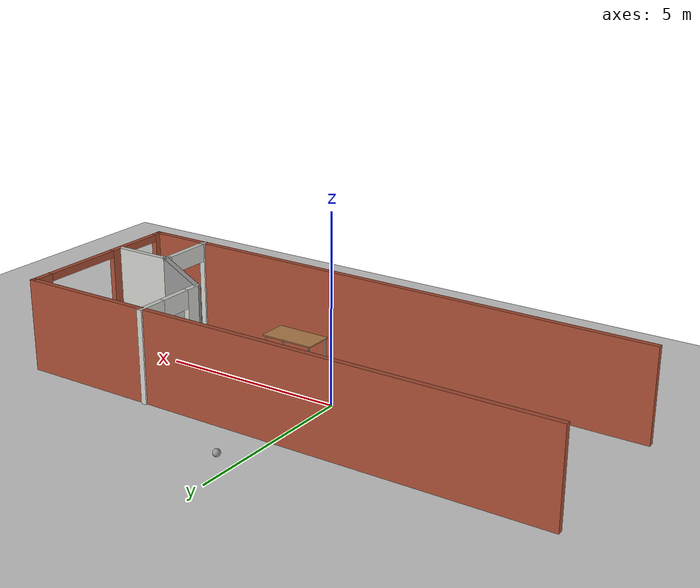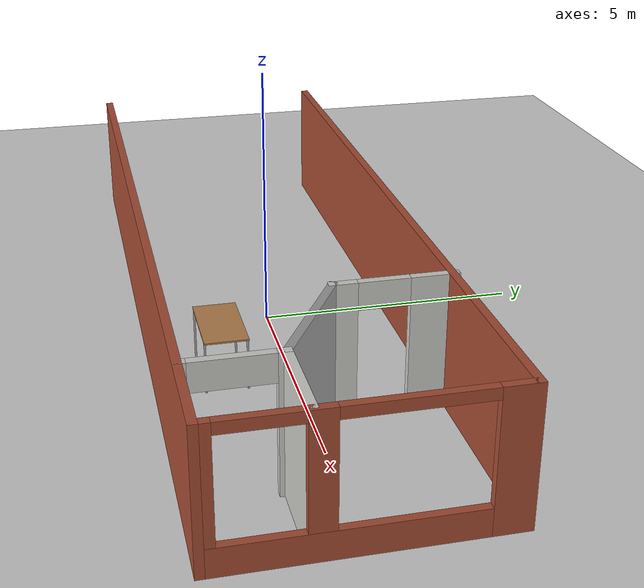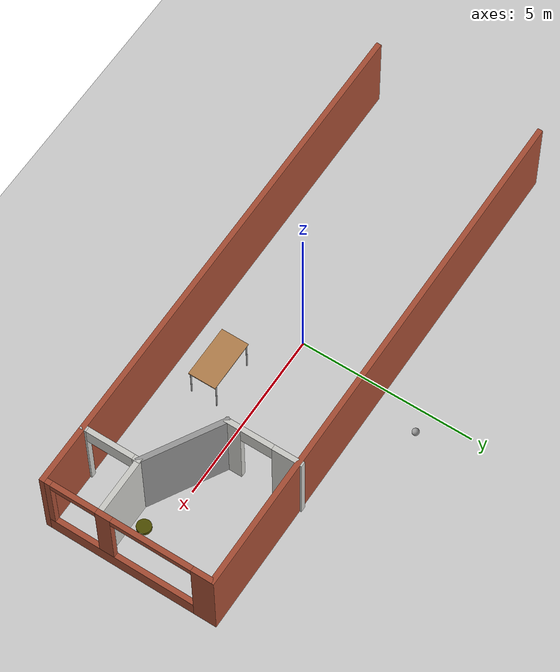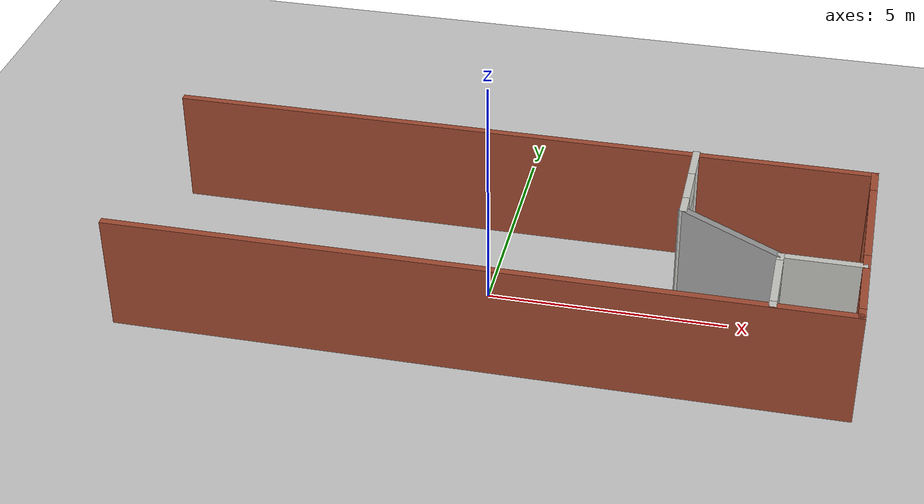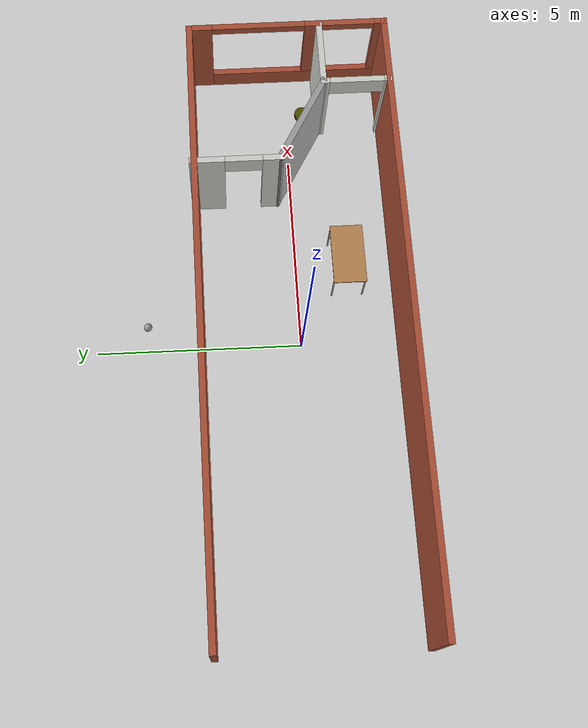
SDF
<sdf version="1.6">
 <world name="default">
  <model name="ground_plane">
   <static>1</static>
   <link name="link">
    <collision name="collision">
     <geometry><plane><normal>0 0 1</normal><size>100 100</size></plane></geometry>
     <surface><friction><ode><mu>100</mu><mu2>50</mu2></ode></friction></surface>
    </collision>
    <visual name="visual">
     <cast_shadows>0</cast_shadows>
     <geometry><plane><normal>0 0 1</normal><size>100 100</size></plane></geometry>
     <material>
      <script><uri>file://media/materials/scripts/gazebo.material</uri><name>Gazebo/Grey</name></script>
     </material>
    </visual>
   </link>
  </model>
  <model name="table">
   <static>1</static>
   <link name="link">
    <collision name="surface">
     <pose>0 0 1 0 -0 0</pose>
     <geometry><box><size>1.5 0.8 0.03</size></box></geometry>
     <surface><friction><ode><mu>0.6</mu><mu2>0.6</mu2></ode></friction></surface>
    </collision>
    <visual name="visual1">
     <pose>0 0 1 0 -0 0</pose>
     <geometry><box><size>1.5 0.8 0.03</size></box></geometry>
     <material>
      <script><uri>file://media/materials/scripts/gazebo.material</uri><name>Gazebo/Wood</name></script>
     </material>
    </visual>
    <collision name="front_left_leg">
     <pose>0.68 0.38 0.5 0 -0 0</pose>
     <geometry><cylinder><radius>0.02</radius><length>1</length></cylinder></geometry>
    </collision>
    <visual name="front_left_leg">
     <pose>0.68 0.38 0.5 0 -0 0</pose>
     <geometry><cylinder><radius>0.02</radius><length>1</length></cylinder></geometry>
     <material>
      <script><uri>file://media/materials/scripts/gazebo.material</uri><name>Gazebo/Grey</name></script>
     </material>
    </visual>
    <collision name="front_right_leg">
     <pose>0.68 -0.38 0.5 0 -0 0</pose>
     <geometry><cylinder><radius>0.02</radius><length>1</length></cylinder></geometry>
    </collision>
    <visual name="front_right_leg">
     <pose>0.68 -0.38 0.5 0 -0 0</pose>
     <geometry><cylinder><radius>0.02</radius><length>1</length></cylinder></geometry>
     <material>
      <script><uri>file://media/materials/scripts/gazebo.material</uri><name>Gazebo/Grey</name></script>
     </material>
    </visual>
    <collision name="back_right_leg">
     <pose>-0.68 -0.38 0.5 0 -0 0</pose>
     <geometry><cylinder><radius>0.02</radius><length>1</length></cylinder></geometry>
    </collision>
    <visual name="back_right_leg">
     <pose>-0.68 -0.38 0.5 0 -0 0</pose>
     <geometry><cylinder><radius>0.02</radius><length>1</length></cylinder></geometry>
     <material>
      <script><uri>file://media/materials/scripts/gazebo.material</uri><name>Gazebo/Grey</name></script>
     </material>
    </visual>
    <collision name="back_left_leg">
     <pose>-0.68 0.38 0.5 0 -0 0</pose>
     <geometry><cylinder><radius>0.02</radius><length>1</length></cylinder></geometry>
    </collision>
    <visual name="back_left_leg">
     <pose>-0.68 0.38 0.5 0 -0 0</pose>
     <geometry><cylinder><radius>0.02</radius><length>1</length></cylinder></geometry>
     <material>
      <script><uri>file://media/materials/scripts/gazebo.material</uri><name>Gazebo/Grey</name></script>
     </material>
    </visual>
   </link>
   <pose>1.9808 -1.22058 0 0 -0 0</pose>
  </model>
  <model name="vacuumRobot">
   <link name="link_1">
    <pose>0.031819 -5.91746 0.05875 0 -0 0</pose>
    <inertial>
     <mass>1</mass>
     <inertia><ixx>0.145833</ixx><ixy>0</ixy><ixz>0</ixz><iyy>0.145833</iyy><iyz>0</iyz><izz>0.125</izz></inertia>
    </inertial>
    <visual name="visual">
     <geometry><cylinder><radius>0.2</radius><length>0.1</length></cylinder></geometry>
     <material>
      <lighting>1</lighting>
      <script><uri>file://media/materials/scripts/gazebo.material</uri><name>Gazebo/Grey</name></script>
      <shader type="pixel"><normal_map>__default__</normal_map></shader>
      <ambient>0.3 0.3 0 1</ambient>
      <diffuse>0.7 0.7 0.7 1</diffuse>
      <specular>0.01 0.01 0.01 1</specular>
      <emissive>0 0 0 1</emissive>
     </material>
    </visual>
    <collision name="collision">
     <geometry><cylinder><radius>0.2</radius><length>0.1</length></cylinder></geometry>
     <surface>
      <friction>
       <ode><mu>1</mu><mu2>1</mu2><fdir1>0 0 0</fdir1><slip1>0</slip1><slip2>0</slip2></ode>
       <torsional>
        <coefficient>1</coefficient>
        <patch_radius>0</patch_radius>
        <surface_radius>0</surface_radius>
        <use_patch_radius>1</use_patch_radius>
        <ode><slip>0</slip></ode>
       </torsional>
      </friction>
      <bounce><restitution_coefficient>0</restitution_coefficient><threshold>1e+06</threshold></bounce>
      <contact>
       <collide_without_contact>0</collide_without_contact>
       <collide_without_contact_bitmask>1</collide_without_contact_bitmask>
       <collide_bitmask>1</collide_bitmask>
       <ode>
        <soft_cfm>0</soft_cfm>
        <soft_erp>0.2</soft_erp>
        <kp>1e+13</kp>
        <kd>1</kd>
        <max_vel>0.01</max_vel>
        <min_depth>0</min_depth>
       </ode>
       <bullet>
        <split_impulse>1</split_impulse>
        <split_impulse_penetration_threshold>-0.01</split_impulse_penetration_threshold>
        <soft_cfm>0</soft_cfm>
        <soft_erp>0.2</soft_erp>
        <kp>1e+13</kp>
        <kd>1</kd>
       </bullet>
      </contact>
     </surface>
    </collision>
   </link>
   <link name="link_2">
    <pose>0.201819 -5.91746 0.03875 0 -0 0</pose>
    <inertial>
     <mass>1</mass>
     <inertia><ixx>0.145833</ixx><ixy>0</ixy><ixz>0</ixz><iyy>0.145833</iyy><iyz>0</iyz><izz>0.125</izz></inertia>
    </inertial>
    <visual name="visual">
     <pose>0 0 0 1.5707 0 1.5707</pose>
     <geometry><cylinder><radius>0.04</radius><length>0.01</length></cylinder></geometry>
     <material>
      <lighting>1</lighting>
      <script><uri>file://media/materials/scripts/gazebo.material</uri><name>Gazebo/Grey</name></script>
      <shader type="pixel"><normal_map>__default__</normal_map></shader>
      <ambient>0.3 0.3 0.3 1</ambient>
      <diffuse>0.7 0.7 0.7 1</diffuse>
      <specular>0.01 0.01 0.01 1</specular>
      <emissive>0 0 0 1</emissive>
     </material>
    </visual>
    <collision name="collision">
     <pose>0 0 0 1.5707 0 1.5707</pose>
     <geometry><cylinder><radius>0.04</radius><length>0.01</length></cylinder></geometry>
     <surface>
      <friction>
       <ode><mu>1</mu><mu2>1</mu2><fdir1>0 0 0</fdir1><slip1>0</slip1><slip2>0</slip2></ode>
       <torsional>
        <coefficient>1</coefficient>
        <patch_radius>0</patch_radius>
        <surface_radius>0</surface_radius>
        <use_patch_radius>1</use_patch_radius>
        <ode><slip>0</slip></ode>
       </torsional>
      </friction>
      <bounce><restitution_coefficient>0</restitution_coefficient><threshold>1e+06</threshold></bounce>
      <contact>
       <collide_without_contact>0</collide_without_contact>
       <collide_without_contact_bitmask>1</collide_without_contact_bitmask>
       <collide_bitmask>1</collide_bitmask>
       <ode>
        <soft_cfm>0</soft_cfm>
        <soft_erp>0.2</soft_erp>
        <kp>1e+13</kp>
        <kd>1</kd>
        <max_vel>0.01</max_vel>
        <min_depth>0</min_depth>
       </ode>
       <bullet>
        <split_impulse>1</split_impulse>
        <split_impulse_penetration_threshold>-0.01</split_impulse_penetration_threshold>
        <soft_cfm>0</soft_cfm>
        <soft_erp>0.2</soft_erp>
        <kp>1e+13</kp>
        <kd>1</kd>
       </bullet>
      </contact>
     </surface>
    </collision>
   </link>
   <link name="link_2_clone">
    <pose>-0.138181 -5.91746 0.03875 0 -0 0</pose>
    <inertial>
     <mass>1</mass>
     <inertia><ixx>0.145833</ixx><ixy>0</ixy><ixz>0</ixz><iyy>0.145833</iyy><iyz>0</iyz><izz>0.125</izz></inertia>
    </inertial>
    <visual name="visual">
     <pose>0 0 0 1.5707 0 1.5707</pose>
     <geometry><cylinder><radius>0.04</radius><length>0.01</length></cylinder></geometry>
     <material>
      <lighting>1</lighting>
      <script><uri>file://media/materials/scripts/gazebo.material</uri><name>Gazebo/Grey</name></script>
      <shader type="pixel"><normal_map>__default__</normal_map></shader>
      <ambient>0.3 0.3 0.3 1</ambient>
      <diffuse>0.7 0.7 0.7 1</diffuse>
      <specular>0.01 0.01 0.01 1</specular>
      <emissive>0 0 0 1</emissive>
     </material>
    </visual>
    <collision name="collision">
     <pose>0 0 0 1.5707 0 1.5707</pose>
     <geometry><cylinder><radius>0.04</radius><length>0.01</length></cylinder></geometry>
     <surface>
      <friction>
       <ode><mu>1</mu><mu2>1</mu2><fdir1>0 0 0</fdir1><slip1>0</slip1><slip2>0</slip2></ode>
       <torsional>
        <coefficient>1</coefficient>
        <patch_radius>0</patch_radius>
        <surface_radius>0</surface_radius>
        <use_patch_radius>1</use_patch_radius>
        <ode><slip>0</slip></ode>
       </torsional>
      </friction>
      <bounce><restitution_coefficient>0</restitution_coefficient><threshold>1e+06</threshold></bounce>
      <contact>
       <collide_without_contact>0</collide_without_contact>
       <collide_without_contact_bitmask>1</collide_without_contact_bitmask>
       <collide_bitmask>1</collide_bitmask>
       <ode>
        <soft_cfm>0</soft_cfm>
        <soft_erp>0.2</soft_erp>
        <kp>1e+13</kp>
        <kd>1</kd>
        <max_vel>0.01</max_vel>
        <min_depth>0</min_depth>
       </ode>
       <bullet>
        <split_impulse>1</split_impulse>
        <split_impulse_penetration_threshold>-0.01</split_impulse_penetration_threshold>
        <soft_cfm>0</soft_cfm>
        <soft_erp>0.2</soft_erp>
        <kp>1e+13</kp>
        <kd>1</kd>
       </bullet>
      </contact>
     </surface>
    </collision>
   </link>
   <link name="link_3">
    <pose>0.031819 -5.74746 0.005 0 -0 0</pose>
    <inertial>
     <mass>1</mass>
     <inertia><ixx>0.1</ixx><ixy>0</ixy><ixz>0</ixz><iyy>0.1</iyy><iyz>0</iyz><izz>0.1</izz></inertia>
    </inertial>
    <visual name="visual">
     <geometry><sphere><radius>0.01</radius></sphere></geometry>
     <material>
      <lighting>1</lighting>
      <script><uri>file://media/materials/scripts/gazebo.material</uri><name>Gazebo/Grey</name></script>
      <shader type="pixel"><normal_map>__default__</normal_map></shader>
      <ambient>0.3 0.3 0.3 1</ambient>
      <diffuse>0.7 0.7 0.7 1</diffuse>
      <specular>0.01 0.01 0.01 1</specular>
      <emissive>0 0 0 1</emissive>
     </material>
    </visual>
    <collision name="collision">
     <geometry><sphere><radius>0.01</radius></sphere></geometry>
     <surface>
      <friction>
       <ode><mu>1</mu><mu2>1</mu2><fdir1>0 0 0</fdir1><slip1>0</slip1><slip2>0</slip2></ode>
       <torsional>
        <coefficient>1</coefficient>
        <patch_radius>0</patch_radius>
        <surface_radius>0</surface_radius>
        <use_patch_radius>1</use_patch_radius>
        <ode><slip>0</slip></ode>
       </torsional>
      </friction>
      <bounce><restitution_coefficient>0</restitution_coefficient><threshold>1e+06</threshold></bounce>
      <contact>
       <collide_without_contact>0</collide_without_contact>
       <collide_without_contact_bitmask>1</collide_without_contact_bitmask>
       <collide_bitmask>1</collide_bitmask>
       <ode>
        <soft_cfm>0</soft_cfm>
        <soft_erp>0.2</soft_erp>
        <kp>1e+13</kp>
        <kd>1</kd>
        <max_vel>0.01</max_vel>
        <min_depth>0</min_depth>
       </ode>
       <bullet>
        <split_impulse>1</split_impulse>
        <split_impulse_penetration_threshold>-0.01</split_impulse_penetration_threshold>
        <soft_cfm>0</soft_cfm>
        <soft_erp>0.2</soft_erp>
        <kp>1e+13</kp>
        <kd>1</kd>
       </bullet>
      </contact>
     </surface>
    </collision>
   </link>
   <joint name="link_1_JOINT_4" type="revolute">
    <parent>link_1</parent>
    <child>link_2</child>
    <axis>
     <xyz>1 0 0</xyz>
     <use_parent_model_frame>0</use_parent_model_frame>
     <limit>
      <lower>-1.79769e+308</lower>
      <upper>1.79769e+308</upper>
      <effort>-1</effort>
      <velocity>-1</velocity>
     </limit>
     <dynamics>
      <spring_reference>0</spring_reference>
      <spring_stiffness>0</spring_stiffness>
      <damping>0</damping>
      <friction>0</friction>
     </dynamics>
    </axis>
    <physics>
     <ode><limit><cfm>0</cfm><erp>0.2</erp></limit><suspension><cfm>0</cfm><erp>0.2</erp></suspension></ode>
    </physics>
   </joint>
   <joint name="link_1_JOINT_5" type="revolute">
    <parent>link_1</parent>
    <child>link_2_clone</child>
    <axis>
     <xyz>1 0 0</xyz>
     <use_parent_model_frame>0</use_parent_model_frame>
     <limit>
      <lower>-1.79769e+308</lower>
      <upper>1.79769e+308</upper>
      <effort>-1</effort>
      <velocity>-1</velocity>
     </limit>
     <dynamics>
      <spring_reference>0</spring_reference>
      <spring_stiffness>0</spring_stiffness>
      <damping>0</damping>
      <friction>0</friction>
     </dynamics>
    </axis>
    <physics>
     <ode><limit><cfm>0</cfm><erp>0.2</erp></limit><suspension><cfm>0</cfm><erp>0.2</erp></suspension></ode>
    </physics>
   </joint>
   <joint name="link_1_JOINT_6" type="revolute">
    <parent>link_1</parent>
    <child>link_3</child>
    <axis>
     <xyz>0 0 1</xyz>
     <use_parent_model_frame>0</use_parent_model_frame>
     <limit>
      <lower>-1.79769e+308</lower>
      <upper>1.79769e+308</upper>
      <effort>-1</effort>
      <velocity>-1</velocity>
     </limit>
     <dynamics>
      <spring_reference>0</spring_reference>
      <spring_stiffness>0</spring_stiffness>
      <damping>0</damping>
      <friction>0</friction>
     </dynamics>
    </axis>
    <physics>
     <ode><limit><cfm>0</cfm><erp>0.2</erp></limit><suspension><cfm>0</cfm><erp>0.2</erp></suspension></ode>
    </physics>
   </joint>
   <static>0</static>
   <pose>6.41835 5.47321 0.131506 0.022012 2e-06 -0.000788</pose>
  </model>
  <model name="buildingMyHouse">
   <link name="Wall_33">
    <pose>0 -2.44789 0 0 -0 3.14159</pose>
    <visual name="Wall_33_Visual">
     <pose>0 0 1.25 0 -0 0</pose>
     <geometry><box><size>15 0.15 2.5</size></box></geometry>
     <material>
      <script><uri>file://media/materials/scripts/gazebo.material</uri><name>Gazebo/Bricks</name></script>
      <ambient>1 1 1 1</ambient>
      <shader type="pixel"/>
      <diffuse>1 1 1 1</diffuse>
      <specular>0.2 0.2 0.2 1</specular>
      <emissive>0 0 0 1</emissive>
     </material>
     <meta><layer>0</layer></meta>
    </visual>
    <collision name="Wall_33_Collision">
     <pose>0 0 1.25 0 -0 0</pose>
     <geometry><box><size>15 0.15 2.5</size></box></geometry>
     <surface>
      <friction>
       <ode><mu>1</mu><mu2>1</mu2><fdir1>0 0 0</fdir1><slip1>0</slip1><slip2>0</slip2></ode>
       <torsional>
        <coefficient>1</coefficient>
        <patch_radius>0</patch_radius>
        <surface_radius>0</surface_radius>
        <use_patch_radius>1</use_patch_radius>
        <ode><slip>0</slip></ode>
       </torsional>
      </friction>
      <bounce><restitution_coefficient>0</restitution_coefficient><threshold>1e+06</threshold></bounce>
      <contact>
       <collide_without_contact>0</collide_without_contact>
       <collide_without_contact_bitmask>1</collide_without_contact_bitmask>
       <collide_bitmask>1</collide_bitmask>
       <ode>
        <soft_cfm>0</soft_cfm>
        <soft_erp>0.2</soft_erp>
        <kp>1e+13</kp>
        <kd>1</kd>
        <max_vel>0.01</max_vel>
        <min_depth>0</min_depth>
       </ode>
       <bullet>
        <split_impulse>1</split_impulse>
        <split_impulse_penetration_threshold>-0.01</split_impulse_penetration_threshold>
        <soft_cfm>0</soft_cfm>
        <soft_erp>0.2</soft_erp>
        <kp>1e+13</kp>
        <kd>1</kd>
       </bullet>
      </contact>
     </surface>
    </collision>
   </link>
   <link name="Wall_35">
    <pose>0 2.40211 0 0 -0 0</pose>
    <visual name="Wall_35_Visual">
     <pose>0 0 1.25 0 -0 0</pose>
     <geometry><box><size>15 0.15 2.5</size></box></geometry>
     <material>
      <script><uri>file://media/materials/scripts/gazebo.material</uri><name>Gazebo/Bricks</name></script>
      <ambient>1 1 1 1</ambient>
      <shader type="pixel"/>
      <diffuse>1 1 1 1</diffuse>
      <specular>0.2 0.2 0.2 1</specular>
      <emissive>0 0 0 1</emissive>
     </material>
     <meta><layer>0</layer></meta>
    </visual>
    <collision name="Wall_35_Collision">
     <pose>0 0 1.25 0 -0 0</pose>
     <geometry><box><size>15 0.15 2.5</size></box></geometry>
     <surface>
      <friction>
       <ode><mu>1</mu><mu2>1</mu2><fdir1>0 0 0</fdir1><slip1>0</slip1><slip2>0</slip2></ode>
       <torsional>
        <coefficient>1</coefficient>
        <patch_radius>0</patch_radius>
        <surface_radius>0</surface_radius>
        <use_patch_radius>1</use_patch_radius>
        <ode><slip>0</slip></ode>
       </torsional>
      </friction>
      <bounce><restitution_coefficient>0</restitution_coefficient><threshold>1e+06</threshold></bounce>
      <contact>
       <collide_without_contact>0</collide_without_contact>
       <collide_without_contact_bitmask>1</collide_without_contact_bitmask>
       <collide_bitmask>1</collide_bitmask>
       <ode>
        <soft_cfm>0</soft_cfm>
        <soft_erp>0.2</soft_erp>
        <kp>1e+13</kp>
        <kd>1</kd>
        <max_vel>0.01</max_vel>
        <min_depth>0</min_depth>
       </ode>
       <bullet>
        <split_impulse>1</split_impulse>
        <split_impulse_penetration_threshold>-0.01</split_impulse_penetration_threshold>
        <soft_cfm>0</soft_cfm>
        <soft_erp>0.2</soft_erp>
        <kp>1e+13</kp>
        <kd>1</kd>
       </bullet>
      </contact>
     </surface>
    </collision>
   </link>
   <link name="Wall_43">
    <pose>4.7591 -0.239607 0 0 0 -0.523599</pose>
    <visual name="Wall_43_Visual">
     <pose>0 0 1.25 0 -0 0</pose>
     <geometry><box><size>2.5 0.15 2.5</size></box></geometry>
     <material>
      <script><uri>file://media/materials/scripts/gazebo.material</uri><name>Gazebo/Grey</name></script>
      <ambient>1 1 1 1</ambient>
      <shader type="pixel"/>
      <diffuse>0.7 0.7 0.7 1</diffuse>
      <specular>0.01 0.01 0.01 1</specular>
      <emissive>0 0 0 1</emissive>
     </material>
     <meta><layer>0</layer></meta>
    </visual>
    <collision name="Wall_43_Collision">
     <pose>0 0 1.25 0 -0 0</pose>
     <geometry><box><size>2.5 0.15 2.5</size></box></geometry>
     <surface>
      <friction>
       <ode><mu>1</mu><mu2>1</mu2><fdir1>0 0 0</fdir1><slip1>0</slip1><slip2>0</slip2></ode>
       <torsional>
        <coefficient>1</coefficient>
        <patch_radius>0</patch_radius>
        <surface_radius>0</surface_radius>
        <use_patch_radius>1</use_patch_radius>
        <ode><slip>0</slip></ode>
       </torsional>
      </friction>
      <bounce><restitution_coefficient>0</restitution_coefficient><threshold>1e+06</threshold></bounce>
      <contact>
       <collide_without_contact>0</collide_without_contact>
       <collide_without_contact_bitmask>1</collide_without_contact_bitmask>
       <collide_bitmask>1</collide_bitmask>
       <ode>
        <soft_cfm>0</soft_cfm>
        <soft_erp>0.2</soft_erp>
        <kp>1e+13</kp>
        <kd>1</kd>
        <max_vel>0.01</max_vel>
        <min_depth>0</min_depth>
       </ode>
       <bullet>
        <split_impulse>1</split_impulse>
        <split_impulse_penetration_threshold>-0.01</split_impulse_penetration_threshold>
        <soft_cfm>0</soft_cfm>
        <soft_erp>0.2</soft_erp>
        <kp>1e+13</kp>
        <kd>1</kd>
       </bullet>
      </contact>
     </surface>
    </collision>
   </link>
   <link name="Wall_51">
    <pose>7.425 -0.022893 0 0 0 -1.5708</pose>
    <visual name="Wall_51_Visual_0">
     <pose>-2.17411 0 1.25 0 -0 0</pose>
     <geometry><box><size>0.651775 0.15 2.5</size></box></geometry>
     <material>
      <script><uri>file://media/materials/scripts/gazebo.material</uri><name>Gazebo/Bricks</name></script>
      <ambient>1 1 1 1</ambient>
      <shader type="pixel"/>
      <diffuse>1 1 1 1</diffuse>
      <specular>0.2 0.2 0.2 1</specular>
      <emissive>0 0 0 1</emissive>
     </material>
     <meta><layer>0</layer></meta>
    </visual>
    <visual name="Wall_51_Visual_1">
     <pose>0.325888 0 0.25 0 -0 0</pose>
     <geometry><box><size>4.34823 0.15 0.5</size></box></geometry>
     <material>
      <script><uri>file://media/materials/scripts/gazebo.material</uri><name>Gazebo/Bricks</name></script>
      <ambient>1 1 1 1</ambient>
      <shader type="pixel"/>
      <diffuse>1 1 1 1</diffuse>
      <specular>0.2 0.2 0.2 1</specular>
      <emissive>0 0 0 1</emissive>
     </material>
     <meta><layer>0</layer></meta>
    </visual>
    <visual name="Wall_51_Visual_2">
     <pose>0.670077 0 1.5 0 -0 0</pose>
     <geometry><box><size>0.430604 0.15 2</size></box></geometry>
     <material>
      <script><uri>file://media/materials/scripts/gazebo.material</uri><name>Gazebo/Bricks</name></script>
      <ambient>1 1 1 1</ambient>
      <shader type="pixel"/>
      <diffuse>1 1 1 1</diffuse>
      <specular>0.2 0.2 0.2 1</specular>
      <emissive>0 0 0 1</emissive>
     </material>
     <meta><layer>0</layer></meta>
    </visual>
    <visual name="Wall_51_Visual_3">
     <pose>2.34269 0 1.5 0 -0 0</pose>
     <geometry><box><size>0.314621 0.15 2</size></box></geometry>
     <material>
      <script><uri>file://media/materials/scripts/gazebo.material</uri><name>Gazebo/Bricks</name></script>
      <ambient>1 1 1 1</ambient>
      <shader type="pixel"/>
      <diffuse>1 1 1 1</diffuse>
      <specular>0.2 0.2 0.2 1</specular>
      <emissive>0 0 0 1</emissive>
     </material>
     <meta><layer>0</layer></meta>
    </visual>
    <visual name="Wall_51_Visual_4">
     <pose>-0.696725 0 2.4 0 -0 0</pose>
     <geometry><box><size>2.303 0.15 0.2</size></box></geometry>
     <material>
      <script><uri>file://media/materials/scripts/gazebo.material</uri><name>Gazebo/Bricks</name></script>
      <ambient>1 1 1 1</ambient>
      <shader type="pixel"/>
      <diffuse>1 1 1 1</diffuse>
      <specular>0.2 0.2 0.2 1</specular>
      <emissive>0 0 0 1</emissive>
     </material>
     <meta><layer>0</layer></meta>
    </visual>
    <visual name="Wall_51_Visual_5">
     <pose>1.53538 0 2.4 0 -0 0</pose>
     <geometry><box><size>1.3 0.15 0.2</size></box></geometry>
     <material>
      <script><uri>file://media/materials/scripts/gazebo.material</uri><name>Gazebo/Bricks</name></script>
      <ambient>1 1 1 1</ambient>
      <shader type="pixel"/>
      <diffuse>1 1 1 1</diffuse>
      <specular>0.2 0.2 0.2 1</specular>
      <emissive>0 0 0 1</emissive>
     </material>
     <meta><layer>0</layer></meta>
    </visual>
    <collision name="Wall_51_Collision_0">
     <pose>-2.17411 0 1.25 0 -0 0</pose>
     <geometry><box><size>0.651775 0.15 2.5</size></box></geometry>
     <surface>
      <friction>
       <ode><mu>1</mu><mu2>1</mu2><fdir1>0 0 0</fdir1><slip1>0</slip1><slip2>0</slip2></ode>
       <torsional>
        <coefficient>1</coefficient>
        <patch_radius>0</patch_radius>
        <surface_radius>0</surface_radius>
        <use_patch_radius>1</use_patch_radius>
        <ode><slip>0</slip></ode>
       </torsional>
      </friction>
      <bounce><restitution_coefficient>0</restitution_coefficient><threshold>1e+06</threshold></bounce>
      <contact>
       <collide_without_contact>0</collide_without_contact>
       <collide_without_contact_bitmask>1</collide_without_contact_bitmask>
       <collide_bitmask>1</collide_bitmask>
       <ode>
        <soft_cfm>0</soft_cfm>
        <soft_erp>0.2</soft_erp>
        <kp>1e+13</kp>
        <kd>1</kd>
        <max_vel>0.01</max_vel>
        <min_depth>0</min_depth>
       </ode>
       <bullet>
        <split_impulse>1</split_impulse>
        <split_impulse_penetration_threshold>-0.01</split_impulse_penetration_threshold>
        <soft_cfm>0</soft_cfm>
        <soft_erp>0.2</soft_erp>
        <kp>1e+13</kp>
        <kd>1</kd>
       </bullet>
      </contact>
     </surface>
    </collision>
    <collision name="Wall_51_Collision_2">
     <pose>0.670077 0 1.5 0 -0 0</pose>
     <geometry><box><size>0.430604 0.15 2</size></box></geometry>
     <surface>
      <friction>
       <ode><mu>1</mu><mu2>1</mu2><fdir1>0 0 0</fdir1><slip1>0</slip1><slip2>0</slip2></ode>
       <torsional>
        <coefficient>1</coefficient>
        <patch_radius>0</patch_radius>
        <surface_radius>0</surface_radius>
        <use_patch_radius>1</use_patch_radius>
        <ode><slip>0</slip></ode>
       </torsional>
      </friction>
      <bounce><restitution_coefficient>0</restitution_coefficient><threshold>1e+06</threshold></bounce>
      <contact>
       <collide_without_contact>0</collide_without_contact>
       <collide_without_contact_bitmask>1</collide_without_contact_bitmask>
       <collide_bitmask>1</collide_bitmask>
       <ode>
        <soft_cfm>0</soft_cfm>
        <soft_erp>0.2</soft_erp>
        <kp>1e+13</kp>
        <kd>1</kd>
        <max_vel>0.01</max_vel>
        <min_depth>0</min_depth>
       </ode>
       <bullet>
        <split_impulse>1</split_impulse>
        <split_impulse_penetration_threshold>-0.01</split_impulse_penetration_threshold>
        <soft_cfm>0</soft_cfm>
        <soft_erp>0.2</soft_erp>
        <kp>1e+13</kp>
        <kd>1</kd>
       </bullet>
      </contact>
     </surface>
    </collision>
    <collision name="Wall_51_Collision_1">
     <pose>0.325888 0 0.25 0 -0 0</pose>
     <geometry><box><size>4.34823 0.15 0.5</size></box></geometry>
     <surface>
      <friction>
       <ode><mu>1</mu><mu2>1</mu2><fdir1>0 0 0</fdir1><slip1>0</slip1><slip2>0</slip2></ode>
       <torsional>
        <coefficient>1</coefficient>
        <patch_radius>0</patch_radius>
        <surface_radius>0</surface_radius>
        <use_patch_radius>1</use_patch_radius>
        <ode><slip>0</slip></ode>
       </torsional>
      </friction>
      <bounce><restitution_coefficient>0</restitution_coefficient><threshold>1e+06</threshold></bounce>
      <contact>
       <collide_without_contact>0</collide_without_contact>
       <collide_without_contact_bitmask>1</collide_without_contact_bitmask>
       <collide_bitmask>1</collide_bitmask>
       <ode>
        <soft_cfm>0</soft_cfm>
        <soft_erp>0.2</soft_erp>
        <kp>1e+13</kp>
        <kd>1</kd>
        <max_vel>0.01</max_vel>
        <min_depth>0</min_depth>
       </ode>
       <bullet>
        <split_impulse>1</split_impulse>
        <split_impulse_penetration_threshold>-0.01</split_impulse_penetration_threshold>
        <soft_cfm>0</soft_cfm>
        <soft_erp>0.2</soft_erp>
        <kp>1e+13</kp>
        <kd>1</kd>
       </bullet>
      </contact>
     </surface>
    </collision>
    <collision name="Wall_51_Collision_3">
     <pose>2.34269 0 1.5 0 -0 0</pose>
     <geometry><box><size>0.314621 0.15 2</size></box></geometry>
     <surface>
      <friction>
       <ode><mu>1</mu><mu2>1</mu2><fdir1>0 0 0</fdir1><slip1>0</slip1><slip2>0</slip2></ode>
       <torsional>
        <coefficient>1</coefficient>
        <patch_radius>0</patch_radius>
        <surface_radius>0</surface_radius>
        <use_patch_radius>1</use_patch_radius>
        <ode><slip>0</slip></ode>
       </torsional>
      </friction>
      <bounce><restitution_coefficient>0</restitution_coefficient><threshold>1e+06</threshold></bounce>
      <contact>
       <collide_without_contact>0</collide_without_contact>
       <collide_without_contact_bitmask>1</collide_without_contact_bitmask>
       <collide_bitmask>1</collide_bitmask>
       <ode>
        <soft_cfm>0</soft_cfm>
        <soft_erp>0.2</soft_erp>
        <kp>1e+13</kp>
        <kd>1</kd>
        <max_vel>0.01</max_vel>
        <min_depth>0</min_depth>
       </ode>
       <bullet>
        <split_impulse>1</split_impulse>
        <split_impulse_penetration_threshold>-0.01</split_impulse_penetration_threshold>
        <soft_cfm>0</soft_cfm>
        <soft_erp>0.2</soft_erp>
        <kp>1e+13</kp>
        <kd>1</kd>
       </bullet>
      </contact>
     </surface>
    </collision>
    <collision name="Wall_51_Collision_4">
     <pose>-0.696725 0 2.4 0 -0 0</pose>
     <geometry><box><size>2.303 0.15 0.2</size></box></geometry>
     <surface>
      <friction>
       <ode><mu>1</mu><mu2>1</mu2><fdir1>0 0 0</fdir1><slip1>0</slip1><slip2>0</slip2></ode>
       <torsional>
        <coefficient>1</coefficient>
        <patch_radius>0</patch_radius>
        <surface_radius>0</surface_radius>
        <use_patch_radius>1</use_patch_radius>
        <ode><slip>0</slip></ode>
       </torsional>
      </friction>
      <bounce><restitution_coefficient>0</restitution_coefficient><threshold>1e+06</threshold></bounce>
      <contact>
       <collide_without_contact>0</collide_without_contact>
       <collide_without_contact_bitmask>1</collide_without_contact_bitmask>
       <collide_bitmask>1</collide_bitmask>
       <ode>
        <soft_cfm>0</soft_cfm>
        <soft_erp>0.2</soft_erp>
        <kp>1e+13</kp>
        <kd>1</kd>
        <max_vel>0.01</max_vel>
        <min_depth>0</min_depth>
       </ode>
       <bullet>
        <split_impulse>1</split_impulse>
        <split_impulse_penetration_threshold>-0.01</split_impulse_penetration_threshold>
        <soft_cfm>0</soft_cfm>
        <soft_erp>0.2</soft_erp>
        <kp>1e+13</kp>
        <kd>1</kd>
       </bullet>
      </contact>
     </surface>
    </collision>
    <collision name="Wall_51_Collision_5">
     <pose>1.53538 0 2.4 0 -0 0</pose>
     <geometry><box><size>1.3 0.15 0.2</size></box></geometry>
     <surface>
      <friction>
       <ode><mu>1</mu><mu2>1</mu2><fdir1>0 0 0</fdir1><slip1>0</slip1><slip2>0</slip2></ode>
       <torsional>
        <coefficient>1</coefficient>
        <patch_radius>0</patch_radius>
        <surface_radius>0</surface_radius>
        <use_patch_radius>1</use_patch_radius>
        <ode><slip>0</slip></ode>
       </torsional>
      </friction>
      <bounce><restitution_coefficient>0</restitution_coefficient><threshold>1e+06</threshold></bounce>
      <contact>
       <collide_without_contact>0</collide_without_contact>
       <collide_without_contact_bitmask>1</collide_without_contact_bitmask>
       <collide_bitmask>1</collide_bitmask>
       <ode>
        <soft_cfm>0</soft_cfm>
        <soft_erp>0.2</soft_erp>
        <kp>1e+13</kp>
        <kd>1</kd>
        <max_vel>0.01</max_vel>
        <min_depth>0</min_depth>
       </ode>
       <bullet>
        <split_impulse>1</split_impulse>
        <split_impulse_penetration_threshold>-0.01</split_impulse_penetration_threshold>
        <soft_cfm>0</soft_cfm>
        <soft_erp>0.2</soft_erp>
        <kp>1e+13</kp>
        <kd>1</kd>
       </bullet>
      </contact>
     </surface>
    </collision>
   </link>
   <link name="Wall_53">
    <pose>6.57668 -0.827107 0 0 -0 0</pose>
    <visual name="Wall_53_Visual">
     <pose>0 0 1.25 0 -0 0</pose>
     <geometry><box><size>1.75 0.15 2.5</size></box></geometry>
     <material>
      <script><uri>file://media/materials/scripts/gazebo.material</uri><name>Gazebo/CeilingTiled</name></script>
      <ambient>1 1 1 1</ambient>
      <shader type="pixel"/>
      <diffuse>1 1 1 1</diffuse>
      <specular>0 0 0 1</specular>
      <emissive>0 0 0 1</emissive>
     </material>
     <meta><layer>0</layer></meta>
    </visual>
    <collision name="Wall_53_Collision">
     <pose>0 0 1.25 0 -0 0</pose>
     <geometry><box><size>1.75 0.15 2.5</size></box></geometry>
     <surface>
      <friction>
       <ode><mu>1</mu><mu2>1</mu2><fdir1>0 0 0</fdir1><slip1>0</slip1><slip2>0</slip2></ode>
       <torsional>
        <coefficient>1</coefficient>
        <patch_radius>0</patch_radius>
        <surface_radius>0</surface_radius>
        <use_patch_radius>1</use_patch_radius>
        <ode><slip>0</slip></ode>
       </torsional>
      </friction>
      <bounce><restitution_coefficient>0</restitution_coefficient><threshold>1e+06</threshold></bounce>
      <contact>
       <collide_without_contact>0</collide_without_contact>
       <collide_without_contact_bitmask>1</collide_without_contact_bitmask>
       <collide_bitmask>1</collide_bitmask>
       <ode>
        <soft_cfm>0</soft_cfm>
        <soft_erp>0.2</soft_erp>
        <kp>1e+13</kp>
        <kd>1</kd>
        <max_vel>0.01</max_vel>
        <min_depth>0</min_depth>
       </ode>
       <bullet>
        <split_impulse>1</split_impulse>
        <split_impulse_penetration_threshold>-0.01</split_impulse_penetration_threshold>
        <soft_cfm>0</soft_cfm>
        <soft_erp>0.2</soft_erp>
        <kp>1e+13</kp>
        <kd>1</kd>
       </bullet>
      </contact>
     </surface>
    </collision>
   </link>
   <link name="Wall_56">
    <pose>5.77668 -1.62711 0 0 0 -1.5708</pose>
    <visual name="Wall_56_Visual_0">
     <pose>-0.760527 0 1.25 0 -0 0</pose>
     <geometry><box><size>0.228947 0.15 2.5</size></box></geometry>
     <material>
      <script><uri>file://media/materials/scripts/gazebo.material</uri><name>Gazebo/CeilingTiled</name></script>
      <ambient>1 1 1 1</ambient>
      <shader type="pixel"/>
      <diffuse>1 1 1 1</diffuse>
      <specular>0 0 0 1</specular>
      <emissive>0 0 0 1</emissive>
     </material>
     <meta><layer>0</layer></meta>
    </visual>
    <visual name="Wall_56_Visual_1">
     <pose>0.784214 0 1.25 0 -0 0</pose>
     <geometry><box><size>0.181572 0.15 2.5</size></box></geometry>
     <material>
      <script><uri>file://media/materials/scripts/gazebo.material</uri><name>Gazebo/CeilingTiled</name></script>
      <ambient>1 1 1 1</ambient>
      <shader type="pixel"/>
      <diffuse>1 1 1 1</diffuse>
      <specular>0 0 0 1</specular>
      <emissive>0 0 0 1</emissive>
     </material>
     <meta><layer>0</layer></meta>
    </visual>
    <visual name="Wall_56_Visual_2">
     <pose>0.023688 0 2.25 0 -0 0</pose>
     <geometry><box><size>1.33948 0.15 0.5</size></box></geometry>
     <material>
      <script><uri>file://media/materials/scripts/gazebo.material</uri><name>Gazebo/CeilingTiled</name></script>
      <ambient>1 1 1 1</ambient>
      <shader type="pixel"/>
      <diffuse>1 1 1 1</diffuse>
      <specular>0 0 0 1</specular>
      <emissive>0 0 0 1</emissive>
     </material>
     <meta><layer>0</layer></meta>
    </visual>
    <collision name="Wall_56_Collision_0">
     <pose>-0.760527 0 1.25 0 -0 0</pose>
     <geometry><box><size>0.228947 0.15 2.5</size></box></geometry>
     <surface>
      <friction>
       <ode><mu>1</mu><mu2>1</mu2><fdir1>0 0 0</fdir1><slip1>0</slip1><slip2>0</slip2></ode>
       <torsional>
        <coefficient>1</coefficient>
        <patch_radius>0</patch_radius>
        <surface_radius>0</surface_radius>
        <use_patch_radius>1</use_patch_radius>
        <ode><slip>0</slip></ode>
       </torsional>
      </friction>
      <bounce><restitution_coefficient>0</restitution_coefficient><threshold>1e+06</threshold></bounce>
      <contact>
       <collide_without_contact>0</collide_without_contact>
       <collide_without_contact_bitmask>1</collide_without_contact_bitmask>
       <collide_bitmask>1</collide_bitmask>
       <ode>
        <soft_cfm>0</soft_cfm>
        <soft_erp>0.2</soft_erp>
        <kp>1e+13</kp>
        <kd>1</kd>
        <max_vel>0.01</max_vel>
        <min_depth>0</min_depth>
       </ode>
       <bullet>
        <split_impulse>1</split_impulse>
        <split_impulse_penetration_threshold>-0.01</split_impulse_penetration_threshold>
        <soft_cfm>0</soft_cfm>
        <soft_erp>0.2</soft_erp>
        <kp>1e+13</kp>
        <kd>1</kd>
       </bullet>
      </contact>
     </surface>
    </collision>
    <collision name="Wall_56_Collision_1">
     <pose>0.784214 0 1.25 0 -0 0</pose>
     <geometry><box><size>0.181572 0.15 2.5</size></box></geometry>
     <surface>
      <friction>
       <ode><mu>1</mu><mu2>1</mu2><fdir1>0 0 0</fdir1><slip1>0</slip1><slip2>0</slip2></ode>
       <torsional>
        <coefficient>1</coefficient>
        <patch_radius>0</patch_radius>
        <surface_radius>0</surface_radius>
        <use_patch_radius>1</use_patch_radius>
        <ode><slip>0</slip></ode>
       </torsional>
      </friction>
      <bounce><restitution_coefficient>0</restitution_coefficient><threshold>1e+06</threshold></bounce>
      <contact>
       <collide_without_contact>0</collide_without_contact>
       <collide_without_contact_bitmask>1</collide_without_contact_bitmask>
       <collide_bitmask>1</collide_bitmask>
       <ode>
        <soft_cfm>0</soft_cfm>
        <soft_erp>0.2</soft_erp>
        <kp>1e+13</kp>
        <kd>1</kd>
        <max_vel>0.01</max_vel>
        <min_depth>0</min_depth>
       </ode>
       <bullet>
        <split_impulse>1</split_impulse>
        <split_impulse_penetration_threshold>-0.01</split_impulse_penetration_threshold>
        <soft_cfm>0</soft_cfm>
        <soft_erp>0.2</soft_erp>
        <kp>1e+13</kp>
        <kd>1</kd>
       </bullet>
      </contact>
     </surface>
    </collision>
    <collision name="Wall_56_Collision_2">
     <pose>0.023688 0 2.25 0 -0 0</pose>
     <geometry><box><size>1.33948 0.15 0.5</size></box></geometry>
     <surface>
      <friction>
       <ode><mu>1</mu><mu2>1</mu2><fdir1>0 0 0</fdir1><slip1>0</slip1><slip2>0</slip2></ode>
       <torsional>
        <coefficient>1</coefficient>
        <patch_radius>0</patch_radius>
        <surface_radius>0</surface_radius>
        <use_patch_radius>1</use_patch_radius>
        <ode><slip>0</slip></ode>
       </torsional>
      </friction>
      <bounce><restitution_coefficient>0</restitution_coefficient><threshold>1e+06</threshold></bounce>
      <contact>
       <collide_without_contact>0</collide_without_contact>
       <collide_without_contact_bitmask>1</collide_without_contact_bitmask>
       <collide_bitmask>1</collide_bitmask>
       <ode>
        <soft_cfm>0</soft_cfm>
        <soft_erp>0.2</soft_erp>
        <kp>1e+13</kp>
        <kd>1</kd>
        <max_vel>0.01</max_vel>
        <min_depth>0</min_depth>
       </ode>
       <bullet>
        <split_impulse>1</split_impulse>
        <split_impulse_penetration_threshold>-0.01</split_impulse_penetration_threshold>
        <soft_cfm>0</soft_cfm>
        <soft_erp>0.2</soft_erp>
        <kp>1e+13</kp>
        <kd>1</kd>
       </bullet>
      </contact>
     </surface>
    </collision>
   </link>
   <link name="Wall_59">
    <pose>3.74153 1.39789 0 0 -0 1.5708</pose>
    <visual name="Wall_59_Visual_0">
     <pose>-0.877746 0 1.25 0 -0 0</pose>
     <geometry><box><size>0.494508 0.15 2.5</size></box></geometry>
     <material>
      <script><uri>file://media/materials/scripts/gazebo.material</uri><name>Gazebo/CeilingTiled</name></script>
      <ambient>1 1 1 1</ambient>
      <shader type="pixel"/>
      <diffuse>1 1 1 1</diffuse>
      <specular>0 0 0 1</specular>
      <emissive>0 0 0 1</emissive>
     </material>
     <meta><layer>0</layer></meta>
    </visual>
    <visual name="Wall_59_Visual_1">
     <pose>0.697254 0 1.25 0 -0 0</pose>
     <geometry><box><size>0.855492 0.15 2.5</size></box></geometry>
     <material>
      <script><uri>file://media/materials/scripts/gazebo.material</uri><name>Gazebo/CeilingTiled</name></script>
      <ambient>1 1 1 1</ambient>
      <shader type="pixel"/>
      <diffuse>1 1 1 1</diffuse>
      <specular>0 0 0 1</specular>
      <emissive>0 0 0 1</emissive>
     </material>
     <meta><layer>0</layer></meta>
    </visual>
    <visual name="Wall_59_Visual_2">
     <pose>-0.180492 0 2.25 0 -0 0</pose>
     <geometry><box><size>0.9 0.15 0.5</size></box></geometry>
     <material>
      <script><uri>file://media/materials/scripts/gazebo.material</uri><name>Gazebo/CeilingTiled</name></script>
      <ambient>1 1 1 1</ambient>
      <shader type="pixel"/>
      <diffuse>1 1 1 1</diffuse>
      <specular>0 0 0 1</specular>
      <emissive>0 0 0 1</emissive>
     </material>
     <meta><layer>0</layer></meta>
    </visual>
    <collision name="Wall_59_Collision_0">
     <pose>-0.877746 0 1.25 0 -0 0</pose>
     <geometry><box><size>0.494508 0.15 2.5</size></box></geometry>
     <surface>
      <friction>
       <ode><mu>1</mu><mu2>1</mu2><fdir1>0 0 0</fdir1><slip1>0</slip1><slip2>0</slip2></ode>
       <torsional>
        <coefficient>1</coefficient>
        <patch_radius>0</patch_radius>
        <surface_radius>0</surface_radius>
        <use_patch_radius>1</use_patch_radius>
        <ode><slip>0</slip></ode>
       </torsional>
      </friction>
      <bounce><restitution_coefficient>0</restitution_coefficient><threshold>1e+06</threshold></bounce>
      <contact>
       <collide_without_contact>0</collide_without_contact>
       <collide_without_contact_bitmask>1</collide_without_contact_bitmask>
       <collide_bitmask>1</collide_bitmask>
       <ode>
        <soft_cfm>0</soft_cfm>
        <soft_erp>0.2</soft_erp>
        <kp>1e+13</kp>
        <kd>1</kd>
        <max_vel>0.01</max_vel>
        <min_depth>0</min_depth>
       </ode>
       <bullet>
        <split_impulse>1</split_impulse>
        <split_impulse_penetration_threshold>-0.01</split_impulse_penetration_threshold>
        <soft_cfm>0</soft_cfm>
        <soft_erp>0.2</soft_erp>
        <kp>1e+13</kp>
        <kd>1</kd>
       </bullet>
      </contact>
     </surface>
    </collision>
    <collision name="Wall_59_Collision_1">
     <pose>0.697254 0 1.25 0 -0 0</pose>
     <geometry><box><size>0.855492 0.15 2.5</size></box></geometry>
     <surface>
      <friction>
       <ode><mu>1</mu><mu2>1</mu2><fdir1>0 0 0</fdir1><slip1>0</slip1><slip2>0</slip2></ode>
       <torsional>
        <coefficient>1</coefficient>
        <patch_radius>0</patch_radius>
        <surface_radius>0</surface_radius>
        <use_patch_radius>1</use_patch_radius>
        <ode><slip>0</slip></ode>
       </torsional>
      </friction>
      <bounce><restitution_coefficient>0</restitution_coefficient><threshold>1e+06</threshold></bounce>
      <contact>
       <collide_without_contact>0</collide_without_contact>
       <collide_without_contact_bitmask>1</collide_without_contact_bitmask>
       <collide_bitmask>1</collide_bitmask>
       <ode>
        <soft_cfm>0</soft_cfm>
        <soft_erp>0.2</soft_erp>
        <kp>1e+13</kp>
        <kd>1</kd>
        <max_vel>0.01</max_vel>
        <min_depth>0</min_depth>
       </ode>
       <bullet>
        <split_impulse>1</split_impulse>
        <split_impulse_penetration_threshold>-0.01</split_impulse_penetration_threshold>
        <soft_cfm>0</soft_cfm>
        <soft_erp>0.2</soft_erp>
        <kp>1e+13</kp>
        <kd>1</kd>
       </bullet>
      </contact>
     </surface>
    </collision>
    <collision name="Wall_59_Collision_2">
     <pose>-0.180492 0 2.25 0 -0 0</pose>
     <geometry><box><size>0.9 0.15 0.5</size></box></geometry>
     <surface>
      <friction>
       <ode><mu>1</mu><mu2>1</mu2><fdir1>0 0 0</fdir1><slip1>0</slip1><slip2>0</slip2></ode>
       <torsional>
        <coefficient>1</coefficient>
        <patch_radius>0</patch_radius>
        <surface_radius>0</surface_radius>
        <use_patch_radius>1</use_patch_radius>
        <ode><slip>0</slip></ode>
       </torsional>
      </friction>
      <bounce><restitution_coefficient>0</restitution_coefficient><threshold>1e+06</threshold></bounce>
      <contact>
       <collide_without_contact>0</collide_without_contact>
       <collide_without_contact_bitmask>1</collide_without_contact_bitmask>
       <collide_bitmask>1</collide_bitmask>
       <ode>
        <soft_cfm>0</soft_cfm>
        <soft_erp>0.2</soft_erp>
        <kp>1e+13</kp>
        <kd>1</kd>
        <max_vel>0.01</max_vel>
        <min_depth>0</min_depth>
       </ode>
       <bullet>
        <split_impulse>1</split_impulse>
        <split_impulse_penetration_threshold>-0.01</split_impulse_penetration_threshold>
        <soft_cfm>0</soft_cfm>
        <soft_erp>0.2</soft_erp>
        <kp>1e+13</kp>
        <kd>1</kd>
       </bullet>
      </contact>
     </surface>
    </collision>
   </link>
   <static>1</static>
   <pose>0.166247 0.02171 0 0 -0 0</pose>
  </model>
  <model name="my_ball">
   <link name="link_0">
    <pose>0 0 0.1 0 -0 0</pose>
    <inertial>
     <mass>1</mass>
     <inertia><ixx>0.1</ixx><ixy>0</ixy><ixz>0</ixz><iyy>0.1</iyy><iyz>0</iyz><izz>0.1</izz></inertia>
    </inertial>
    <visual name="visual">
     <geometry><sphere><radius>0.1</radius></sphere></geometry>
     <material>
      <lighting>1</lighting>
      <script><uri>file://media/materials/scripts/gazebo.material</uri><name>Gazebo/Grey</name></script>
      <shader type="pixel"><normal_map>__default__</normal_map></shader>
      <ambient>1 1 1 1</ambient>
      <diffuse>1 1 1 1</diffuse>
      <specular>1 1 1 1</specular>
      <emissive>1 1 1 1</emissive>
     </material>
    </visual>
    <collision name="collision">
     <geometry><sphere><radius>0.1</radius></sphere></geometry>
     <surface>
      <friction>
       <ode><mu>1</mu><mu2>1</mu2><fdir1>0 0 0</fdir1><slip1>0</slip1><slip2>0</slip2></ode>
       <torsional>
        <coefficient>1</coefficient>
        <patch_radius>0</patch_radius>
        <surface_radius>0</surface_radius>
        <use_patch_radius>1</use_patch_radius>
        <ode><slip>0</slip></ode>
       </torsional>
      </friction>
      <bounce><restitution_coefficient>0</restitution_coefficient><threshold>1e+06</threshold></bounce>
      <contact>
       <collide_without_contact>0</collide_without_contact>
       <collide_without_contact_bitmask>1</collide_without_contact_bitmask>
       <collide_bitmask>1</collide_bitmask>
       <ode>
        <soft_cfm>0</soft_cfm>
        <soft_erp>0.2</soft_erp>
        <kp>1e+13</kp>
        <kd>1</kd>
        <max_vel>0.01</max_vel>
        <min_depth>0</min_depth>
       </ode>
       <bullet>
        <split_impulse>1</split_impulse>
        <split_impulse_penetration_threshold>-0.01</split_impulse_penetration_threshold>
        <soft_cfm>0</soft_cfm>
        <soft_erp>0.2</soft_erp>
        <kp>1e+13</kp>
        <kd>1</kd>
       </bullet>
      </contact>
     </surface>
    </collision>
   </link>
   <static>0</static>
   <pose>0.620914 3.74988 0 0 -0 0</pose>
  </model>
 </world>
</sdf>
